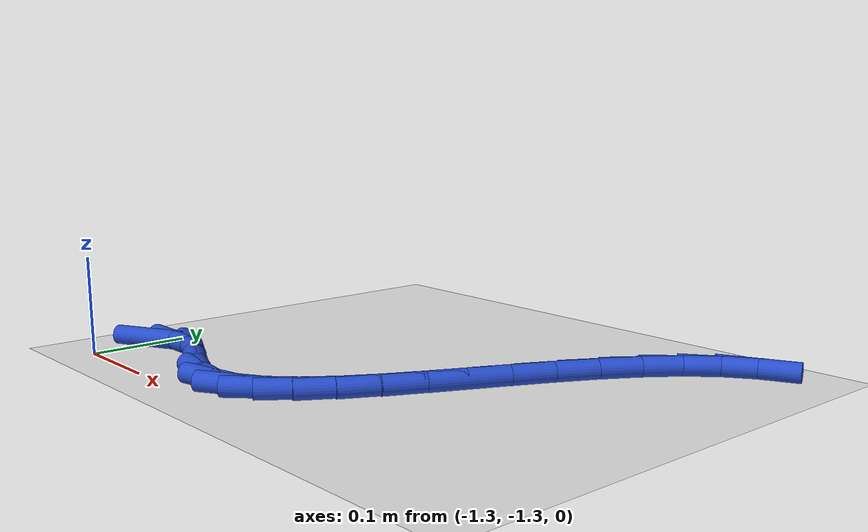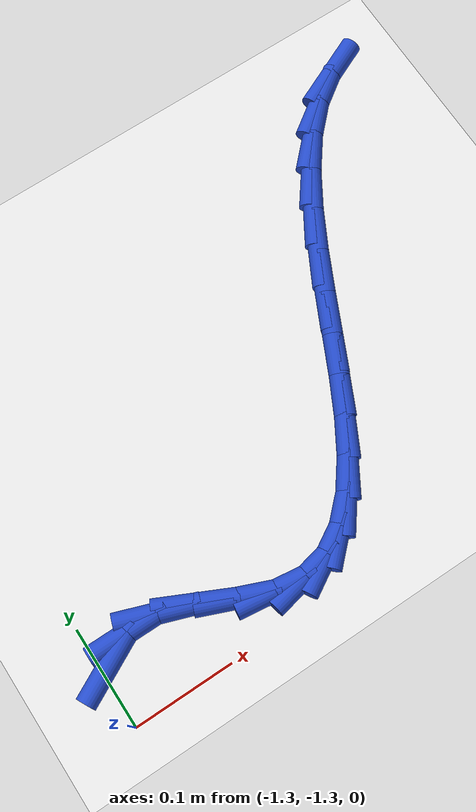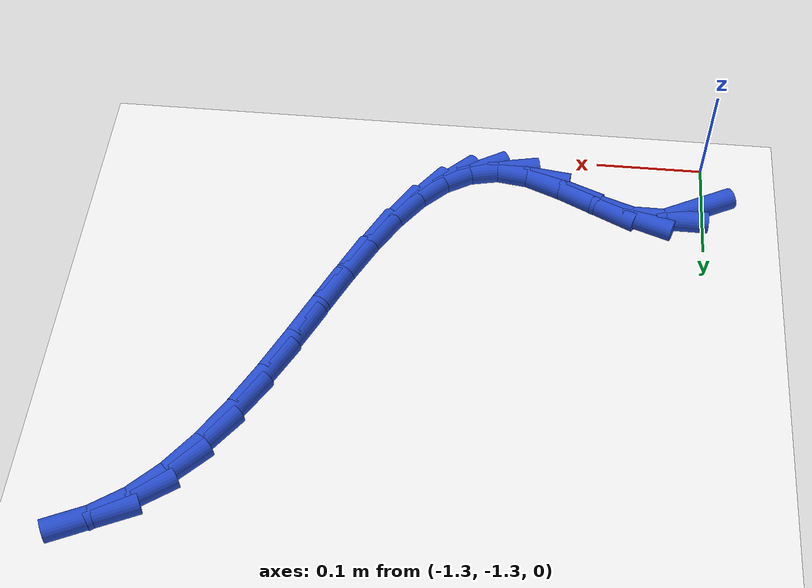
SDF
<sdf version="1.6">
 <world name="default">
  <model name="ground_plane">
   <static>1</static>
   <link name="link">
    <collision name="collision">
     <geometry><plane><normal>0 0 1</normal><size>100 100</size></plane></geometry>
     <surface><friction><ode><mu>100</mu><mu2>50</mu2></ode></friction></surface>
    </collision>
    <visual name="visual">
     <cast_shadows>0</cast_shadows>
     <geometry><plane><normal>0 0 1</normal><size>100 100</size></plane></geometry>
     <material>
      <script><uri>file://media/materials/scripts/gazebo.material</uri><name>Gazebo/WhiteGlow</name></script>
     </material>
    </visual>
   </link>
  </model>
  <model name="line">
   <link name="link_192">
    <pose>-1.2902456092396386 -1.2418587219373505 0.01 0 1.57 0.47239425273237134</pose>
    <collision name="collision">
     <geometry><cylinder><radius>0.01</radius><length>0.08</length></cylinder></geometry>
    </collision>
    <visual name="visual">
     <material>
      <script><name>Gazebo/Blue</name><uri>file://media/materials/scripts/gazebo.material</uri></script>
     </material>
     <geometry><cylinder><radius>0.01</radius><length>0.08</length></cylinder></geometry>
    </visual>
   </link>
   <link name="link_193">
    <pose>-1.26298604616079 -1.2279295864848108 0.01 0 1.57 -0.0038345730757155445</pose>
    <collision name="collision">
     <geometry><cylinder><radius>0.01</radius><length>0.08</length></cylinder></geometry>
    </collision>
    <visual name="visual">
     <material>
      <script><name>Gazebo/Blue</name><uri>file://media/materials/scripts/gazebo.material</uri></script>
     </material>
     <geometry><cylinder><radius>0.01</radius><length>0.08</length></cylinder></geometry>
    </visual>
   </link>
   <link name="link_194">
    <pose>-1.2324990120871364 -1.2280464918178187 0.01 0 1.57 -0.3423776091353266</pose>
    <collision name="collision">
     <geometry><cylinder><radius>0.01</radius><length>0.08</length></cylinder></geometry>
    </collision>
    <visual name="visual">
     <material>
      <script><name>Gazebo/Blue</name><uri>file://media/materials/scripts/gazebo.material</uri></script>
     </material>
     <geometry><cylinder><radius>0.01</radius><length>0.08</length></cylinder></geometry>
    </visual>
   </link>
   <link name="link_195">
    <pose>-1.1994272992039547 -1.239833721684534 0.01 0 1.57 -0.4471739283937927</pose>
    <collision name="collision">
     <geometry><cylinder><radius>0.01</radius><length>0.08</length></cylinder></geometry>
    </collision>
    <visual name="visual">
     <material>
      <script><name>Gazebo/Blue</name><uri>file://media/materials/scripts/gazebo.material</uri></script>
     </material>
     <geometry><cylinder><radius>0.01</radius><length>0.08</length></cylinder></geometry>
    </visual>
   </link>
   <link name="link_196">
    <pose>-1.165680370679501 -1.2560178811318312 0.01 0 1.57 -0.3854536666777968</pose>
    <collision name="collision">
     <geometry><cylinder><radius>0.01</radius><length>0.08</length></cylinder></geometry>
    </collision>
    <visual name="visual">
     <material>
      <script><name>Gazebo/Blue</name><uri>file://media/materials/scripts/gazebo.material</uri></script>
     </material>
     <geometry><cylinder><radius>0.01</radius><length>0.08</length></cylinder></geometry>
    </visual>
   </link>
   <link name="link_197">
    <pose>-1.1332011107846311 -1.2691963499976882 0.01 0 1.57 -0.13336277376911498</pose>
    <collision name="collision">
     <geometry><cylinder><radius>0.01</radius><length>0.08</length></cylinder></geometry>
    </collision>
    <visual name="visual">
     <material>
      <script><name>Gazebo/Blue</name><uri>file://media/materials/scripts/gazebo.material</uri></script>
     </material>
     <geometry><cylinder><radius>0.01</radius><length>0.08</length></cylinder></geometry>
    </visual>
   </link>
   <link name="link_198">
    <pose>-1.1036017710537933 -1.273167370373297 0.01 0 1.57 0.21086537313840578</pose>
    <collision name="collision">
     <geometry><cylinder><radius>0.01</radius><length>0.08</length></cylinder></geometry>
    </collision>
    <visual name="visual">
     <material>
      <script><name>Gazebo/Blue</name><uri>file://media/materials/scripts/gazebo.material</uri></script>
     </material>
     <geometry><cylinder><radius>0.01</radius><length>0.08</length></cylinder></geometry>
    </visual>
   </link>
   <link name="link_199">
    <pose>-1.0769179077142474 -1.2674557615175641 0.01 0 1.57 0.5295000327287394</pose>
    <collision name="collision">
     <geometry><cylinder><radius>0.01</radius><length>0.08</length></cylinder></geometry>
    </collision>
    <visual name="visual">
     <material>
      <script><name>Gazebo/Blue</name><uri>file://media/materials/scripts/gazebo.material</uri></script>
     </material>
     <geometry><cylinder><radius>0.01</radius><length>0.08</length></cylinder></geometry>
    </visual>
   </link>
   <link name="link_200">
    <pose>-1.052715605146122 -1.2532914703373388 0.01 0 1.57 0.7677616881303853</pose>
    <collision name="collision">
     <geometry><cylinder><radius>0.01</radius><length>0.08</length></cylinder></geometry>
    </collision>
    <visual name="visual">
     <material>
      <script><name>Gazebo/Blue</name><uri>file://media/materials/scripts/gazebo.material</uri></script>
     </material>
     <geometry><cylinder><radius>0.01</radius><length>0.08</length></cylinder></geometry>
    </visual>
   </link>
   <link name="link_201">
    <pose>-1.030560868505673 -1.2319047314815783 0.01 0 1.57 0.9271327387923965</pose>
    <collision name="collision">
     <geometry><cylinder><radius>0.01</radius><length>0.08</length></cylinder></geometry>
    </collision>
    <visual name="visual">
     <material>
      <script><name>Gazebo/Blue</name><uri>file://media/materials/scripts/gazebo.material</uri></script>
     </material>
     <geometry><cylinder><radius>0.01</radius><length>0.08</length></cylinder></geometry>
    </visual>
   </link>
   <link name="link_202">
    <pose>-1.0100197029491544 -1.204525779599239 0.01 0 1.57 1.0286164333332708</pose>
    <collision name="collision">
     <geometry><cylinder><radius>0.01</radius><length>0.08</length></cylinder></geometry>
    </collision>
    <visual name="visual">
     <material>
      <script><name>Gazebo/Blue</name><uri>file://media/materials/scripts/gazebo.material</uri></script>
     </material>
     <geometry><cylinder><radius>0.01</radius><length>0.08</length></cylinder></geometry>
    </visual>
   </link>
   <link name="link_203">
    <pose>-0.9906581136328212 -1.1723848493392774 0.01 0 1.57 1.089816990229334</pose>
    <collision name="collision">
     <geometry><cylinder><radius>0.01</radius><length>0.08</length></cylinder></geometry>
    </collision>
    <visual name="visual">
     <material>
      <script><name>Gazebo/Blue</name><uri>file://media/materials/scripts/gazebo.material</uri></script>
     </material>
     <geometry><cylinder><radius>0.01</radius><length>0.08</length></cylinder></geometry>
    </visual>
   </link>
   <link name="link_204">
    <pose>-0.9720421057129288 -1.1367121753506506 0.01 0 1.57 1.1216336458262601</pose>
    <collision name="collision">
     <geometry><cylinder><radius>0.01</radius><length>0.08</length></cylinder></geometry>
    </collision>
    <visual name="visual">
     <material>
      <script><name>Gazebo/Blue</name><uri>file://media/materials/scripts/gazebo.material</uri></script>
     </material>
     <geometry><cylinder><radius>0.01</radius><length>0.08</length></cylinder></geometry>
    </visual>
   </link>
   <link name="link_205">
    <pose>-0.9537376843457314 -1.0987379922823142 0.01 0 1.57 1.1298535742511773</pose>
    <collision name="collision">
     <geometry><cylinder><radius>0.01</radius><length>0.08</length></cylinder></geometry>
    </collision>
    <visual name="visual">
     <material>
      <script><name>Gazebo/Blue</name><uri>file://media/materials/scripts/gazebo.material</uri></script>
     </material>
     <geometry><cylinder><radius>0.01</radius><length>0.08</length></cylinder></geometry>
    </visual>
   </link>
   <link name="link_206">
    <pose>-0.935310854687484 -1.0596925347832251 0.01 0 1.57 1.1166571907138416</pose>
    <collision name="collision">
     <geometry><cylinder><radius>0.01</radius><length>0.08</length></cylinder></geometry>
    </collision>
    <visual name="visual">
     <material>
      <script><name>Gazebo/Blue</name><uri>file://media/materials/scripts/gazebo.material</uri></script>
     </material>
     <geometry><cylinder><radius>0.01</radius><length>0.08</length></cylinder></geometry>
    </visual>
   </link>
   <link name="link_207">
    <pose>-0.9163276218944417 -1.0208060375023402 0.01 0 1.57 1.081356769231568</pose>
    <collision name="collision">
     <geometry><cylinder><radius>0.01</radius><length>0.08</length></cylinder></geometry>
    </collision>
    <visual name="visual">
     <material>
      <script><name>Gazebo/Blue</name><uri>file://media/materials/scripts/gazebo.material</uri></script>
     </material>
     <geometry><cylinder><radius>0.01</radius><length>0.08</length></cylinder></geometry>
    </visual>
   </link>
   <link name="link_208">
    <pose>-0.8963539911228594 -0.983308735088616 0.01 0 1.57 1.0205001029030225</pose>
    <collision name="collision">
     <geometry><cylinder><radius>0.01</radius><length>0.08</length></cylinder></geometry>
    </collision>
    <visual name="visual">
     <material>
      <script><name>Gazebo/Blue</name><uri>file://media/materials/scripts/gazebo.material</uri></script>
     </material>
     <geometry><cylinder><radius>0.01</radius><length>0.08</length></cylinder></geometry>
    </visual>
   </link>
   <link name="link_209">
    <pose>-0.8749559675289924 -0.9484308621910098 0.01 0 1.57 0.9275994295080283</pose>
    <collision name="collision">
     <geometry><cylinder><radius>0.01</radius><length>0.08</length></cylinder></geometry>
    </collision>
    <visual name="visual">
     <material>
      <script><name>Gazebo/Blue</name><uri>file://media/materials/scripts/gazebo.material</uri></script>
     </material>
     <geometry><cylinder><radius>0.01</radius><length>0.08</length></cylinder></geometry>
    </visual>
   </link>
   <link name="link_210">
    <pose>-0.8516995562690944 -0.9174026534584763 0.01 0 1.57 0.7931560391860598</pose>
    <collision name="collision">
     <geometry><cylinder><radius>0.01</radius><length>0.08</length></cylinder></geometry>
    </collision>
    <visual name="visual">
     <material>
      <script><name>Gazebo/Blue</name><uri>file://media/materials/scripts/gazebo.material</uri></script>
     </material>
     <geometry><cylinder><radius>0.01</radius><length>0.08</length></cylinder></geometry>
    </visual>
   </link>
   <link name="link_211">
    <pose>-0.8261507624994205 -0.8914543435399727 0.01 0 1.57 0.6127989435481429</pose>
    <collision name="collision">
     <geometry><cylinder><radius>0.01</radius><length>0.08</length></cylinder></geometry>
    </collision>
    <visual name="visual">
     <material>
      <script><name>Gazebo/Blue</name><uri>file://media/materials/scripts/gazebo.material</uri></script>
     </material>
     <geometry><cylinder><radius>0.01</radius><length>0.08</length></cylinder></geometry>
    </visual>
   </link>
   <link name="link_212">
    <pose>-0.7979489448015246 -0.8716258363887032 0.01 0 1.57 0.42993337219650507</pose>
    <collision name="collision">
     <geometry><cylinder><radius>0.01</radius><length>0.08</length></cylinder></geometry>
    </collision>
    <visual name="visual">
     <material>
      <script><name>Gazebo/Blue</name><uri>file://media/materials/scripts/gazebo.material</uri></script>
     </material>
     <geometry><cylinder><radius>0.01</radius><length>0.08</length></cylinder></geometry>
    </visual>
   </link>
  </model>
 </world>
</sdf>
